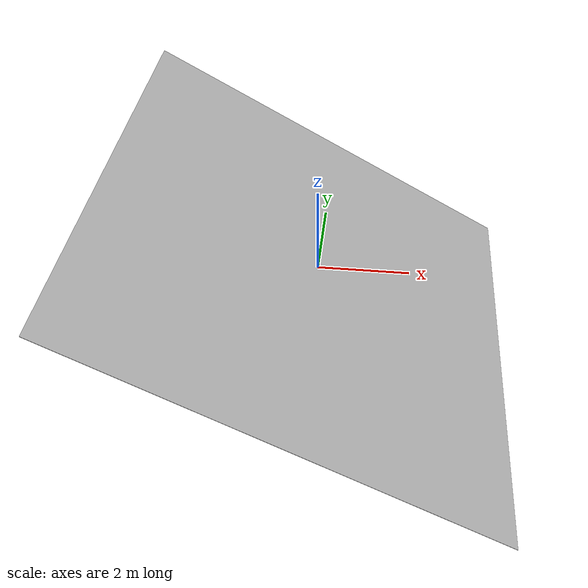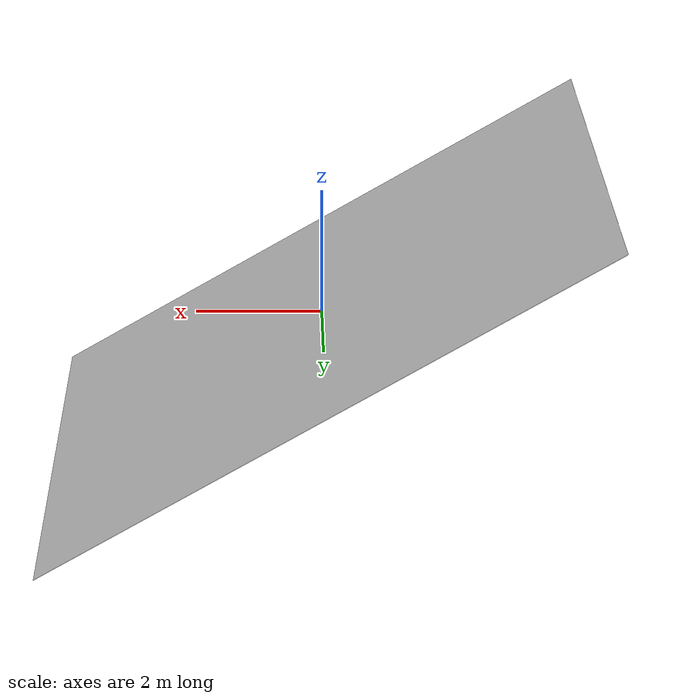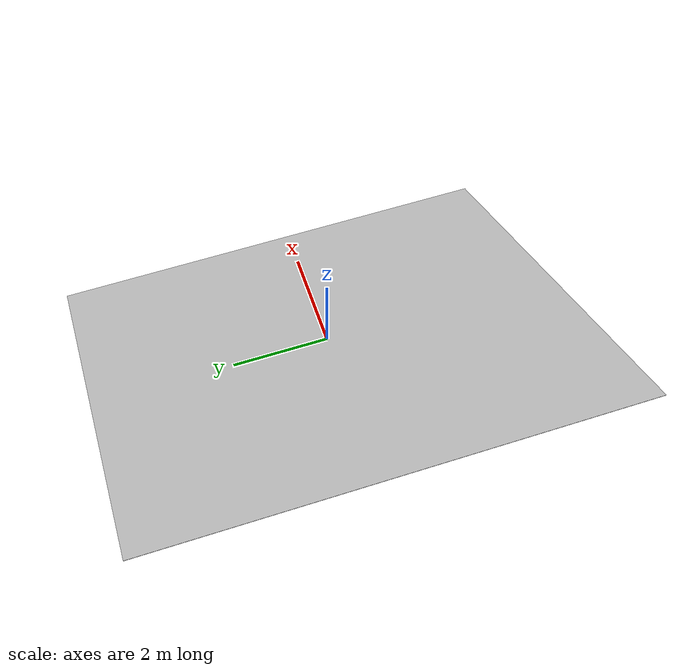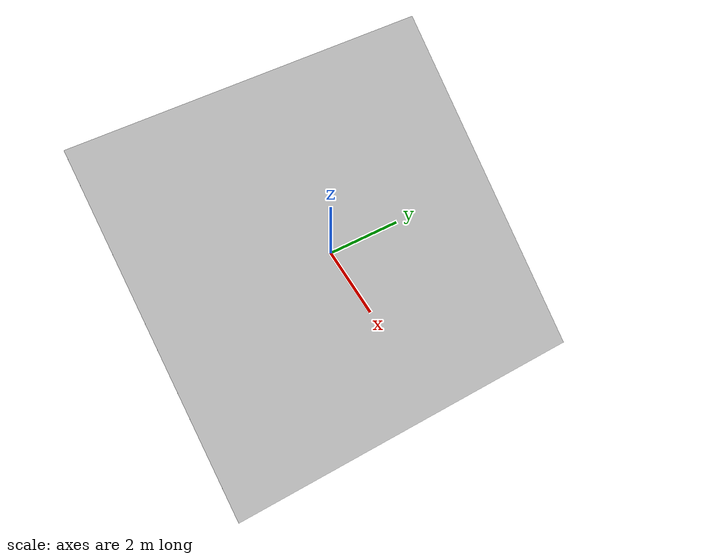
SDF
<?xml version="1.0" ?>
<sdf version="1.5">
  <world name="default">
    <!-- A global light source -->
    <include>
      <uri>model://sun</uri>
    </include>
    <!-- A ground plane -->
    <model name="slanted_plane">
      <static>1</static>
      <pose>0 0 0 0 0.26 0</pose>
      <link name="link">
        <visual name="slanted_plane_visual">
          <geometry>
            <plane>
              <normal>0.26 0 0.96</normal>
              <size>10 10</size>
            </plane>
          </geometry>
        </visual>
        <collision name="slanted_plane_collision">
          <geometry>
            <plane>
              <normal>0.26 0 0.96</normal>
              <size>10 10</size>
            </plane>
          </geometry>
        </collision>
      </link>
    </model>
  </world>
</sdf>
